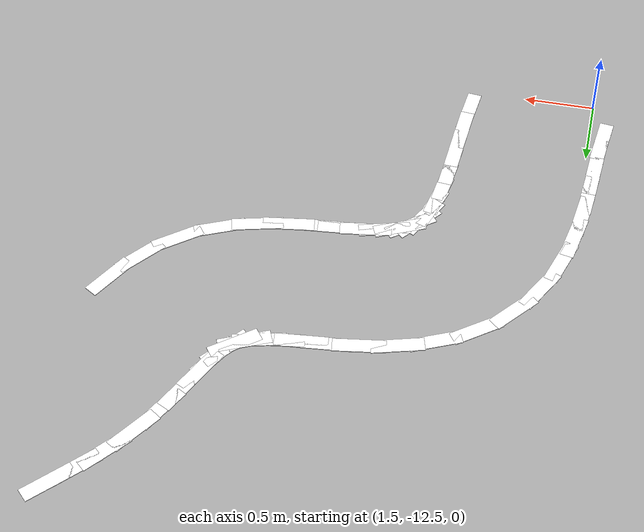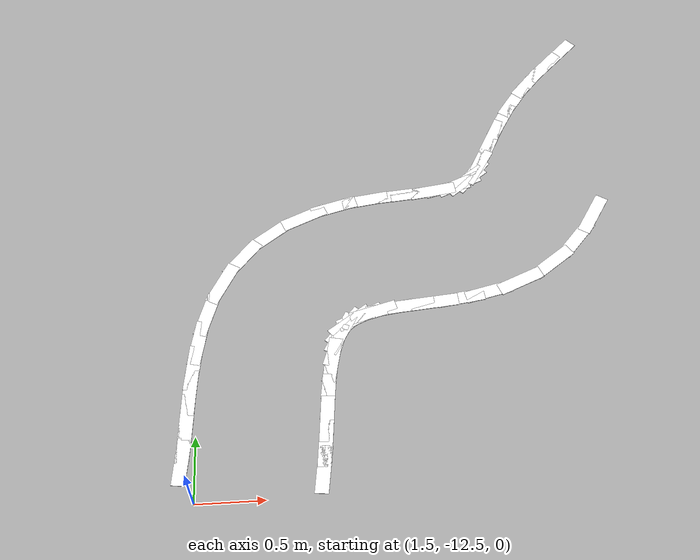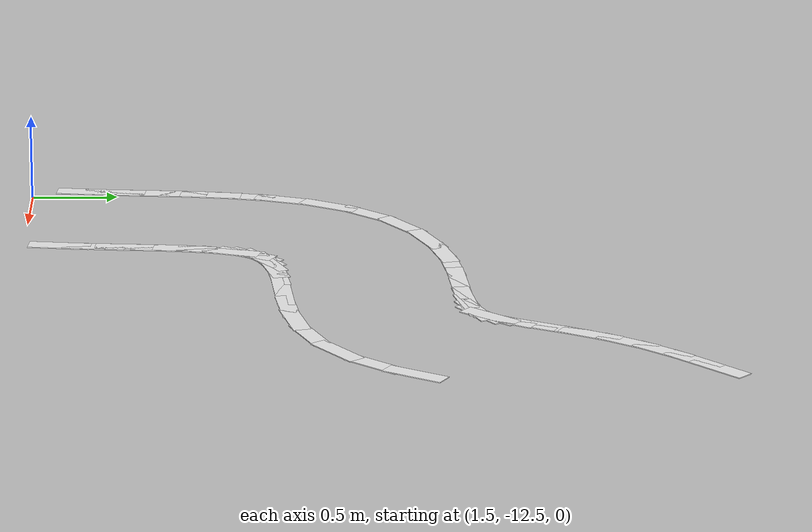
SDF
<sdf version="1.7">
 <world name="cone_lane">
  <model name="ground_plane">
   <static>true</static>
   <link name="link">
    <collision name="collision">
     <geometry><plane><normal>0 0 1</normal><size>150 150</size></plane></geometry>
     <surface><friction><ode><mu>1.0</mu></ode></friction></surface>
    </collision>
   </link>
  </model>
  <model name="line_L128">
   <static>true</static>
   <pose>4.556 -10.281 0.0030 0 0 -2.1092</pose>
   <link name="link">
    <visual name="v">
     <geometry><box><size>0.360 0.100 0.005</size></box></geometry>
     <material>
      <ambient>0.85 0.85 0.85 1</ambient>
      <diffuse>0.95 0.95 0.95 1</diffuse>
      <specular>0.1 0.1 0.1 1</specular>
      <emissive>0.7 0.7 0.7 1</emissive>
     </material>
    </visual>
   </link>
  </model>
  <model name="line_L129">
   <static>true</static>
   <pose>4.404 -10.496 0.0030 0 0 -2.2708</pose>
   <link name="link">
    <visual name="v">
     <geometry><box><size>0.360 0.100 0.005</size></box></geometry>
     <material>
      <ambient>0.85 0.85 0.85 1</ambient>
      <diffuse>0.95 0.95 0.95 1</diffuse>
      <specular>0.1 0.1 0.1 1</specular>
      <emissive>0.7 0.7 0.7 1</emissive>
     </material>
    </visual>
   </link>
  </model>
  <model name="line_L130">
   <static>true</static>
   <pose>4.191 -10.698 0.0030 0 0 -2.4992</pose>
   <link name="link">
    <visual name="v">
     <geometry><box><size>0.360 0.100 0.005</size></box></geometry>
     <material>
      <ambient>0.85 0.85 0.85 1</ambient>
      <diffuse>0.95 0.95 0.95 1</diffuse>
      <specular>0.1 0.1 0.1 1</specular>
      <emissive>0.7 0.7 0.7 1</emissive>
     </material>
    </visual>
   </link>
  </model>
  <model name="line_L131">
   <static>true</static>
   <pose>3.927 -10.850 0.0030 0 0 -2.7352</pose>
   <link name="link">
    <visual name="v">
     <geometry><box><size>0.360 0.100 0.005</size></box></geometry>
     <material>
      <ambient>0.85 0.85 0.85 1</ambient>
      <diffuse>0.95 0.95 0.95 1</diffuse>
      <specular>0.1 0.1 0.1 1</specular>
      <emissive>0.7 0.7 0.7 1</emissive>
     </material>
    </visual>
   </link>
  </model>
  <model name="line_L132">
   <static>true</static>
   <pose>3.678 -10.932 0.0030 0 0 -2.9009</pose>
   <link name="link">
    <visual name="v">
     <geometry><box><size>0.360 0.100 0.005</size></box></geometry>
     <material>
      <ambient>0.85 0.85 0.85 1</ambient>
      <diffuse>0.95 0.95 0.95 1</diffuse>
      <specular>0.1 0.1 0.1 1</specular>
      <emissive>0.7 0.7 0.7 1</emissive>
     </material>
    </visual>
   </link>
  </model>
  <model name="line_L133">
   <static>true</static>
   <pose>3.465 -10.973 0.0030 0 0 -2.9963</pose>
   <link name="link">
    <visual name="v">
     <geometry><box><size>0.360 0.100 0.005</size></box></geometry>
     <material>
      <ambient>0.85 0.85 0.85 1</ambient>
      <diffuse>0.95 0.95 0.95 1</diffuse>
      <specular>0.1 0.1 0.1 1</specular>
      <emissive>0.7 0.7 0.7 1</emissive>
     </material>
    </visual>
   </link>
  </model>
  <model name="line_L134">
   <static>true</static>
   <pose>3.264 -10.997 0.0030 0 0 -3.0444</pose>
   <link name="link">
    <visual name="v">
     <geometry><box><size>0.360 0.100 0.005</size></box></geometry>
     <material>
      <ambient>0.85 0.85 0.85 1</ambient>
      <diffuse>0.95 0.95 0.95 1</diffuse>
      <specular>0.1 0.1 0.1 1</specular>
      <emissive>0.7 0.7 0.7 1</emissive>
     </material>
    </visual>
   </link>
  </model>
  <model name="line_L135">
   <static>true</static>
   <pose>3.083 -11.014 0.0030 0 0 -3.0454</pose>
   <link name="link">
    <visual name="v">
     <geometry><box><size>0.360 0.100 0.005</size></box></geometry>
     <material>
      <ambient>0.85 0.85 0.85 1</ambient>
      <diffuse>0.95 0.95 0.95 1</diffuse>
      <specular>0.1 0.1 0.1 1</specular>
      <emissive>0.7 0.7 0.7 1</emissive>
     </material>
    </visual>
   </link>
  </model>
  <model name="line_L136">
   <static>true</static>
   <pose>2.930 -11.032 0.0030 0 0 -2.9955</pose>
   <link name="link">
    <visual name="v">
     <geometry><box><size>0.360 0.100 0.005</size></box></geometry>
     <material>
      <ambient>0.85 0.85 0.85 1</ambient>
      <diffuse>0.95 0.95 0.95 1</diffuse>
      <specular>0.1 0.1 0.1 1</specular>
      <emissive>0.7 0.7 0.7 1</emissive>
     </material>
    </visual>
   </link>
  </model>
  <model name="line_L137">
   <static>true</static>
   <pose>2.801 -11.058 0.0030 0 0 -2.8752</pose>
   <link name="link">
    <visual name="v">
     <geometry><box><size>0.360 0.100 0.005</size></box></geometry>
     <material>
      <ambient>0.85 0.85 0.85 1</ambient>
      <diffuse>0.95 0.95 0.95 1</diffuse>
      <specular>0.1 0.1 0.1 1</specular>
      <emissive>0.7 0.7 0.7 1</emissive>
     </material>
    </visual>
   </link>
  </model>
  <model name="line_L138">
   <static>true</static>
   <pose>2.702 -11.092 0.0030 0 0 -2.7299</pose>
   <link name="link">
    <visual name="v">
     <geometry><box><size>0.360 0.100 0.005</size></box></geometry>
     <material>
      <ambient>0.85 0.85 0.85 1</ambient>
      <diffuse>0.95 0.95 0.95 1</diffuse>
      <specular>0.1 0.1 0.1 1</specular>
      <emissive>0.7 0.7 0.7 1</emissive>
     </material>
    </visual>
   </link>
  </model>
  <model name="line_L139">
   <static>true</static>
   <pose>2.631 -11.131 0.0030 0 0 -2.5167</pose>
   <link name="link">
    <visual name="v">
     <geometry><box><size>0.360 0.100 0.005</size></box></geometry>
     <material>
      <ambient>0.85 0.85 0.85 1</ambient>
      <diffuse>0.95 0.95 0.95 1</diffuse>
      <specular>0.1 0.1 0.1 1</specular>
      <emissive>0.7 0.7 0.7 1</emissive>
     </material>
    </visual>
   </link>
  </model>
  <model name="line_L140">
   <static>true</static>
   <pose>2.587 -11.171 0.0030 0 0 -2.2751</pose>
   <link name="link">
    <visual name="v">
     <geometry><box><size>0.360 0.100 0.005</size></box></geometry>
     <material>
      <ambient>0.85 0.85 0.85 1</ambient>
      <diffuse>0.95 0.95 0.95 1</diffuse>
      <specular>0.1 0.1 0.1 1</specular>
      <emissive>0.7 0.7 0.7 1</emissive>
     </material>
    </visual>
   </link>
  </model>
  <model name="line_L141">
   <static>true</static>
   <pose>2.553 -11.222 0.0030 0 0 -2.0715</pose>
   <link name="link">
    <visual name="v">
     <geometry><box><size>0.360 0.100 0.005</size></box></geometry>
     <material>
      <ambient>0.85 0.85 0.85 1</ambient>
      <diffuse>0.95 0.95 0.95 1</diffuse>
      <specular>0.1 0.1 0.1 1</specular>
      <emissive>0.7 0.7 0.7 1</emissive>
     </material>
    </visual>
   </link>
  </model>
  <model name="line_L142">
   <static>true</static>
   <pose>2.514 -11.316 0.0030 0 0 -1.8864</pose>
   <link name="link">
    <visual name="v">
     <geometry><box><size>0.360 0.100 0.005</size></box></geometry>
     <material>
      <ambient>0.85 0.85 0.85 1</ambient>
      <diffuse>0.95 0.95 0.95 1</diffuse>
      <specular>0.1 0.1 0.1 1</specular>
      <emissive>0.7 0.7 0.7 1</emissive>
     </material>
    </visual>
   </link>
  </model>
  <model name="line_L143">
   <static>true</static>
   <pose>2.482 -11.439 0.0030 0 0 -1.7690</pose>
   <link name="link">
    <visual name="v">
     <geometry><box><size>0.360 0.100 0.005</size></box></geometry>
     <material>
      <ambient>0.85 0.85 0.85 1</ambient>
      <diffuse>0.95 0.95 0.95 1</diffuse>
      <specular>0.1 0.1 0.1 1</specular>
      <emissive>0.7 0.7 0.7 1</emissive>
     </material>
    </visual>
   </link>
  </model>
  <model name="line_L144">
   <static>true</static>
   <pose>2.460 -11.575 0.0030 0 0 -1.7002</pose>
   <link name="link">
    <visual name="v">
     <geometry><box><size>0.360 0.100 0.005</size></box></geometry>
     <material>
      <ambient>0.85 0.85 0.85 1</ambient>
      <diffuse>0.95 0.95 0.95 1</diffuse>
      <specular>0.1 0.1 0.1 1</specular>
      <emissive>0.7 0.7 0.7 1</emissive>
     </material>
    </visual>
   </link>
  </model>
  <model name="line_L145">
   <static>true</static>
   <pose>2.443 -11.734 0.0030 0 0 -1.6595</pose>
   <link name="link">
    <visual name="v">
     <geometry><box><size>0.360 0.100 0.005</size></box></geometry>
     <material>
      <ambient>0.85 0.85 0.85 1</ambient>
      <diffuse>0.95 0.95 0.95 1</diffuse>
      <specular>0.1 0.1 0.1 1</specular>
      <emissive>0.7 0.7 0.7 1</emissive>
     </material>
    </visual>
   </link>
  </model>
  <model name="line_L146">
   <static>true</static>
   <pose>2.430 -11.910 0.0030 0 0 -1.6440</pose>
   <link name="link">
    <visual name="v">
     <geometry><box><size>0.360 0.100 0.005</size></box></geometry>
     <material>
      <ambient>0.85 0.85 0.85 1</ambient>
      <diffuse>0.95 0.95 0.95 1</diffuse>
      <specular>0.1 0.1 0.1 1</specular>
      <emissive>0.7 0.7 0.7 1</emissive>
     </material>
    </visual>
   </link>
  </model>
  <model name="line_L147">
   <static>true</static>
   <pose>2.415 -12.098 0.0030 0 0 -1.6526</pose>
   <link name="link">
    <visual name="v">
     <geometry><box><size>0.360 0.100 0.005</size></box></geometry>
     <material>
      <ambient>0.85 0.85 0.85 1</ambient>
      <diffuse>0.95 0.95 0.95 1</diffuse>
      <specular>0.1 0.1 0.1 1</specular>
      <emissive>0.7 0.7 0.7 1</emissive>
     </material>
    </visual>
   </link>
  </model>
  <model name="line_L148">
   <static>true</static>
   <pose>2.396 -12.295 0.0030 0 0 -1.6859</pose>
   <link name="link">
    <visual name="v">
     <geometry><box><size>0.360 0.100 0.005</size></box></geometry>
     <material>
      <ambient>0.85 0.85 0.85 1</ambient>
      <diffuse>0.95 0.95 0.95 1</diffuse>
      <specular>0.1 0.1 0.1 1</specular>
      <emissive>0.7 0.7 0.7 1</emissive>
     </material>
    </visual>
   </link>
  </model>
  <model name="line_R121">
   <static>true</static>
   <pose>4.475 -8.647 0.0030 0 0 -2.3562</pose>
   <link name="link">
    <visual name="v">
     <geometry><box><size>0.360 0.100 0.005</size></box></geometry>
     <material>
      <ambient>0.85 0.85 0.85 1</ambient>
      <diffuse>0.95 0.95 0.95 1</diffuse>
      <specular>0.1 0.1 0.1 1</specular>
      <emissive>0.7 0.7 0.7 1</emissive>
     </material>
    </visual>
   </link>
  </model>
  <model name="line_R122">
   <static>true</static>
   <pose>4.345 -8.777 0.0030 0 0 -2.3483</pose>
   <link name="link">
    <visual name="v">
     <geometry><box><size>0.360 0.100 0.005</size></box></geometry>
     <material>
      <ambient>0.85 0.85 0.85 1</ambient>
      <diffuse>0.95 0.95 0.95 1</diffuse>
      <specular>0.1 0.1 0.1 1</specular>
      <emissive>0.7 0.7 0.7 1</emissive>
     </material>
    </visual>
   </link>
  </model>
  <model name="line_R123">
   <static>true</static>
   <pose>4.200 -8.933 0.0030 0 0 -2.2834</pose>
   <link name="link">
    <visual name="v">
     <geometry><box><size>0.360 0.100 0.005</size></box></geometry>
     <material>
      <ambient>0.85 0.85 0.85 1</ambient>
      <diffuse>0.95 0.95 0.95 1</diffuse>
      <specular>0.1 0.1 0.1 1</specular>
      <emissive>0.7 0.7 0.7 1</emissive>
     </material>
    </visual>
   </link>
  </model>
  <model name="line_R124">
   <static>true</static>
   <pose>4.057 -9.116 0.0030 0 0 -2.1814</pose>
   <link name="link">
    <visual name="v">
     <geometry><box><size>0.360 0.100 0.005</size></box></geometry>
     <material>
      <ambient>0.85 0.85 0.85 1</ambient>
      <diffuse>0.95 0.95 0.95 1</diffuse>
      <specular>0.1 0.1 0.1 1</specular>
      <emissive>0.7 0.7 0.7 1</emissive>
     </material>
    </visual>
   </link>
  </model>
  <model name="line_R125">
   <static>true</static>
   <pose>3.933 -9.313 0.0030 0 0 -2.0848</pose>
   <link name="link">
    <visual name="v">
     <geometry><box><size>0.360 0.100 0.005</size></box></geometry>
     <material>
      <ambient>0.85 0.85 0.85 1</ambient>
      <diffuse>0.95 0.95 0.95 1</diffuse>
      <specular>0.1 0.1 0.1 1</specular>
      <emissive>0.7 0.7 0.7 1</emissive>
     </material>
    </visual>
   </link>
  </model>
  <model name="line_R126">
   <static>true</static>
   <pose>3.843 -9.484 0.0030 0 0 -2.0337</pose>
   <link name="link">
    <visual name="v">
     <geometry><box><size>0.360 0.100 0.005</size></box></geometry>
     <material>
      <ambient>0.85 0.85 0.85 1</ambient>
      <diffuse>0.95 0.95 0.95 1</diffuse>
      <specular>0.1 0.1 0.1 1</specular>
      <emissive>0.7 0.7 0.7 1</emissive>
     </material>
    </visual>
   </link>
  </model>
  <model name="line_R127">
   <static>true</static>
   <pose>3.760 -9.652 0.0030 0 0 -2.0381</pose>
   <link name="link">
    <visual name="v">
     <geometry><box><size>0.360 0.100 0.005</size></box></geometry>
     <material>
      <ambient>0.85 0.85 0.85 1</ambient>
      <diffuse>0.95 0.95 0.95 1</diffuse>
      <specular>0.1 0.1 0.1 1</specular>
      <emissive>0.7 0.7 0.7 1</emissive>
     </material>
    </visual>
   </link>
  </model>
  <model name="line_R128">
   <static>true</static>
   <pose>3.697 -9.768 0.0030 0 0 -2.1092</pose>
   <link name="link">
    <visual name="v">
     <geometry><box><size>0.360 0.100 0.005</size></box></geometry>
     <material>
      <ambient>0.85 0.85 0.85 1</ambient>
      <diffuse>0.95 0.95 0.95 1</diffuse>
      <specular>0.1 0.1 0.1 1</specular>
      <emissive>0.7 0.7 0.7 1</emissive>
     </material>
    </visual>
   </link>
  </model>
  <model name="line_R129">
   <static>true</static>
   <pose>3.639 -9.852 0.0030 0 0 -2.2708</pose>
   <link name="link">
    <visual name="v">
     <geometry><box><size>0.360 0.100 0.005</size></box></geometry>
     <material>
      <ambient>0.85 0.85 0.85 1</ambient>
      <diffuse>0.95 0.95 0.95 1</diffuse>
      <specular>0.1 0.1 0.1 1</specular>
      <emissive>0.7 0.7 0.7 1</emissive>
     </material>
    </visual>
   </link>
  </model>
  <model name="line_R130">
   <static>true</static>
   <pose>3.592 -9.898 0.0030 0 0 -2.4992</pose>
   <link name="link">
    <visual name="v">
     <geometry><box><size>0.360 0.100 0.005</size></box></geometry>
     <material>
      <ambient>0.85 0.85 0.85 1</ambient>
      <diffuse>0.95 0.95 0.95 1</diffuse>
      <specular>0.1 0.1 0.1 1</specular>
      <emissive>0.7 0.7 0.7 1</emissive>
     </material>
    </visual>
   </link>
  </model>
  <model name="line_R131">
   <static>true</static>
   <pose>3.532 -9.932 0.0030 0 0 -2.7352</pose>
   <link name="link">
    <visual name="v">
     <geometry><box><size>0.360 0.100 0.005</size></box></geometry>
     <material>
      <ambient>0.85 0.85 0.85 1</ambient>
      <diffuse>0.95 0.95 0.95 1</diffuse>
      <specular>0.1 0.1 0.1 1</specular>
      <emissive>0.7 0.7 0.7 1</emissive>
     </material>
    </visual>
   </link>
  </model>
  <model name="line_R132">
   <static>true</static>
   <pose>3.440 -9.961 0.0030 0 0 -2.9009</pose>
   <link name="link">
    <visual name="v">
     <geometry><box><size>0.360 0.100 0.005</size></box></geometry>
     <material>
      <ambient>0.85 0.85 0.85 1</ambient>
      <diffuse>0.95 0.95 0.95 1</diffuse>
      <specular>0.1 0.1 0.1 1</specular>
      <emissive>0.7 0.7 0.7 1</emissive>
     </material>
    </visual>
   </link>
  </model>
  <model name="line_R133">
   <static>true</static>
   <pose>3.321 -9.984 0.0030 0 0 -2.9963</pose>
   <link name="link">
    <visual name="v">
     <geometry><box><size>0.360 0.100 0.005</size></box></geometry>
     <material>
      <ambient>0.85 0.85 0.85 1</ambient>
      <diffuse>0.95 0.95 0.95 1</diffuse>
      <specular>0.1 0.1 0.1 1</specular>
      <emissive>0.7 0.7 0.7 1</emissive>
     </material>
    </visual>
   </link>
  </model>
  <model name="line_R134">
   <static>true</static>
   <pose>3.167 -10.002 0.0030 0 0 -3.0444</pose>
   <link name="link">
    <visual name="v">
     <geometry><box><size>0.360 0.100 0.005</size></box></geometry>
     <material>
      <ambient>0.85 0.85 0.85 1</ambient>
      <diffuse>0.95 0.95 0.95 1</diffuse>
      <specular>0.1 0.1 0.1 1</specular>
      <emissive>0.7 0.7 0.7 1</emissive>
     </material>
    </visual>
   </link>
  </model>
  <model name="line_R135">
   <static>true</static>
   <pose>2.987 -10.018 0.0030 0 0 -3.0454</pose>
   <link name="link">
    <visual name="v">
     <geometry><box><size>0.360 0.100 0.005</size></box></geometry>
     <material>
      <ambient>0.85 0.85 0.85 1</ambient>
      <diffuse>0.95 0.95 0.95 1</diffuse>
      <specular>0.1 0.1 0.1 1</specular>
      <emissive>0.7 0.7 0.7 1</emissive>
     </material>
    </visual>
   </link>
  </model>
  <model name="line_R136">
   <static>true</static>
   <pose>2.785 -10.042 0.0030 0 0 -2.9955</pose>
   <link name="link">
    <visual name="v">
     <geometry><box><size>0.360 0.100 0.005</size></box></geometry>
     <material>
      <ambient>0.85 0.85 0.85 1</ambient>
      <diffuse>0.95 0.95 0.95 1</diffuse>
      <specular>0.1 0.1 0.1 1</specular>
      <emissive>0.7 0.7 0.7 1</emissive>
     </material>
    </visual>
   </link>
  </model>
  <model name="line_R137">
   <static>true</static>
   <pose>2.538 -10.093 0.0030 0 0 -2.8752</pose>
   <link name="link">
    <visual name="v">
     <geometry><box><size>0.360 0.100 0.005</size></box></geometry>
     <material>
      <ambient>0.85 0.85 0.85 1</ambient>
      <diffuse>0.95 0.95 0.95 1</diffuse>
      <specular>0.1 0.1 0.1 1</specular>
      <emissive>0.7 0.7 0.7 1</emissive>
     </material>
    </visual>
   </link>
  </model>
  <model name="line_R138">
   <static>true</static>
   <pose>2.302 -10.176 0.0030 0 0 -2.7299</pose>
   <link name="link">
    <visual name="v">
     <geometry><box><size>0.360 0.100 0.005</size></box></geometry>
     <material>
      <ambient>0.85 0.85 0.85 1</ambient>
      <diffuse>0.95 0.95 0.95 1</diffuse>
      <specular>0.1 0.1 0.1 1</specular>
      <emissive>0.7 0.7 0.7 1</emissive>
     </material>
    </visual>
   </link>
  </model>
  <model name="line_R139">
   <static>true</static>
   <pose>2.046 -10.320 0.0030 0 0 -2.5167</pose>
   <link name="link">
    <visual name="v">
     <geometry><box><size>0.360 0.100 0.005</size></box></geometry>
     <material>
      <ambient>0.85 0.85 0.85 1</ambient>
      <diffuse>0.95 0.95 0.95 1</diffuse>
      <specular>0.1 0.1 0.1 1</specular>
      <emissive>0.7 0.7 0.7 1</emissive>
     </material>
    </visual>
   </link>
  </model>
  <model name="line_R140">
   <static>true</static>
   <pose>1.825 -10.524 0.0030 0 0 -2.2751</pose>
   <link name="link">
    <visual name="v">
     <geometry><box><size>0.360 0.100 0.005</size></box></geometry>
     <material>
      <ambient>0.85 0.85 0.85 1</ambient>
      <diffuse>0.95 0.95 0.95 1</diffuse>
      <specular>0.1 0.1 0.1 1</specular>
      <emissive>0.7 0.7 0.7 1</emissive>
     </material>
    </visual>
   </link>
  </model>
  <model name="line_R141">
   <static>true</static>
   <pose>1.676 -10.742 0.0030 0 0 -2.0715</pose>
   <link name="link">
    <visual name="v">
     <geometry><box><size>0.360 0.100 0.005</size></box></geometry>
     <material>
      <ambient>0.85 0.85 0.85 1</ambient>
      <diffuse>0.95 0.95 0.95 1</diffuse>
      <specular>0.1 0.1 0.1 1</specular>
      <emissive>0.7 0.7 0.7 1</emissive>
     </material>
    </visual>
   </link>
  </model>
  <model name="line_R142">
   <static>true</static>
   <pose>1.563 -11.005 0.0030 0 0 -1.8864</pose>
   <link name="link">
    <visual name="v">
     <geometry><box><size>0.360 0.100 0.005</size></box></geometry>
     <material>
      <ambient>0.85 0.85 0.85 1</ambient>
      <diffuse>0.95 0.95 0.95 1</diffuse>
      <specular>0.1 0.1 0.1 1</specular>
      <emissive>0.7 0.7 0.7 1</emissive>
     </material>
    </visual>
   </link>
  </model>
  <model name="line_R143">
   <static>true</static>
   <pose>1.502 -11.242 0.0030 0 0 -1.7690</pose>
   <link name="link">
    <visual name="v">
     <geometry><box><size>0.360 0.100 0.005</size></box></geometry>
     <material>
      <ambient>0.85 0.85 0.85 1</ambient>
      <diffuse>0.95 0.95 0.95 1</diffuse>
      <specular>0.1 0.1 0.1 1</specular>
      <emissive>0.7 0.7 0.7 1</emissive>
     </material>
    </visual>
   </link>
  </model>
  <model name="line_R144">
   <static>true</static>
   <pose>1.469 -11.446 0.0030 0 0 -1.7002</pose>
   <link name="link">
    <visual name="v">
     <geometry><box><size>0.360 0.100 0.005</size></box></geometry>
     <material>
      <ambient>0.85 0.85 0.85 1</ambient>
      <diffuse>0.95 0.95 0.95 1</diffuse>
      <specular>0.1 0.1 0.1 1</specular>
      <emissive>0.7 0.7 0.7 1</emissive>
     </material>
    </visual>
   </link>
  </model>
  <model name="line_R145">
   <static>true</static>
   <pose>1.447 -11.645 0.0030 0 0 -1.6595</pose>
   <link name="link">
    <visual name="v">
     <geometry><box><size>0.360 0.100 0.005</size></box></geometry>
     <material>
      <ambient>0.85 0.85 0.85 1</ambient>
      <diffuse>0.95 0.95 0.95 1</diffuse>
      <specular>0.1 0.1 0.1 1</specular>
      <emissive>0.7 0.7 0.7 1</emissive>
     </material>
    </visual>
   </link>
  </model>
  <model name="line_R146">
   <static>true</static>
   <pose>1.432 -11.837 0.0030 0 0 -1.6440</pose>
   <link name="link">
    <visual name="v">
     <geometry><box><size>0.360 0.100 0.005</size></box></geometry>
     <material>
      <ambient>0.85 0.85 0.85 1</ambient>
      <diffuse>0.95 0.95 0.95 1</diffuse>
      <specular>0.1 0.1 0.1 1</specular>
      <emissive>0.7 0.7 0.7 1</emissive>
     </material>
    </visual>
   </link>
  </model>
  <model name="line_R147">
   <static>true</static>
   <pose>1.419 -12.016 0.0030 0 0 -1.6526</pose>
   <link name="link">
    <visual name="v">
     <geometry><box><size>0.360 0.100 0.005</size></box></geometry>
     <material>
      <ambient>0.85 0.85 0.85 1</ambient>
      <diffuse>0.95 0.95 0.95 1</diffuse>
      <specular>0.1 0.1 0.1 1</specular>
      <emissive>0.7 0.7 0.7 1</emissive>
     </material>
    </visual>
   </link>
  </model>
  <model name="line_R148">
   <static>true</static>
   <pose>1.403 -12.180 0.0030 0 0 -1.6859</pose>
   <link name="link">
    <visual name="v">
     <geometry><box><size>0.360 0.100 0.005</size></box></geometry>
     <material>
      <ambient>0.85 0.85 0.85 1</ambient>
      <diffuse>0.95 0.95 0.95 1</diffuse>
      <specular>0.1 0.1 0.1 1</specular>
      <emissive>0.7 0.7 0.7 1</emissive>
     </material>
    </visual>
   </link>
  </model>
 </world>
</sdf>
